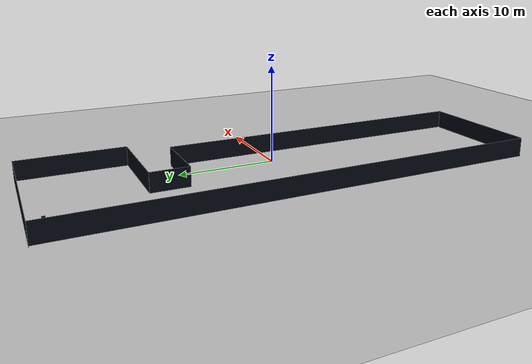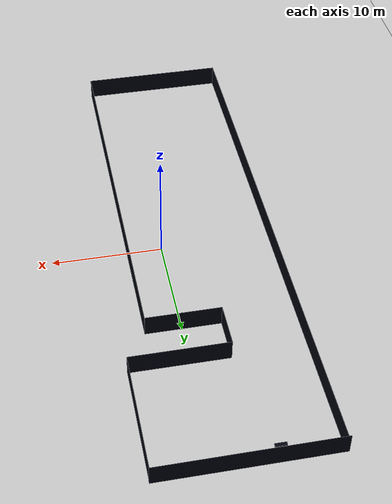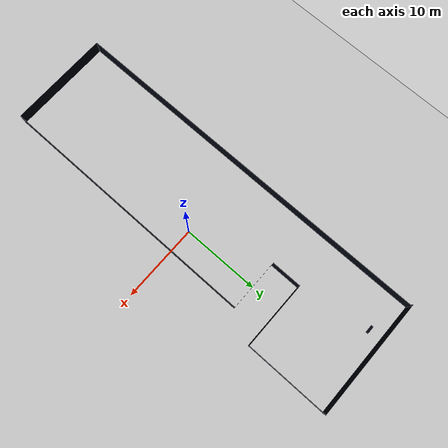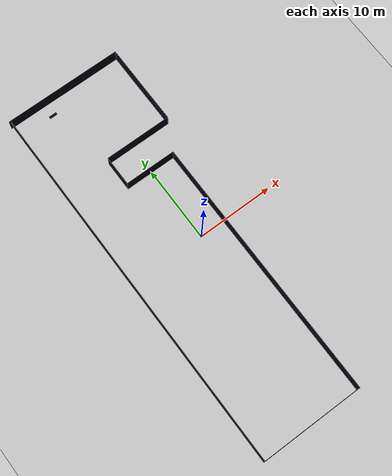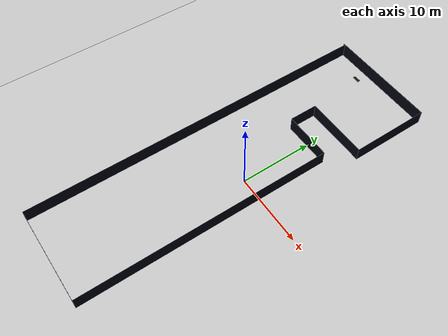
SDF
<?xml version="1.0"?>
<sdf version='1.8'>
    <world name='ahg2202_world'>
        <physics name='1ms' type='ignored'>
            <max_step_size>0.003</max_step_size>
            <real_time_factor>1</real_time_factor>
            <real_time_update_rate>1000</real_time_update_rate>
        </physics>
        <plugin name='ignition::gazebo::systems::Physics' filename='ignition-gazebo-physics-system' />
        <plugin name='ignition::gazebo::systems::UserCommands' filename='ignition-gazebo-user-commands-system' />
        <plugin name='ignition::gazebo::systems::SceneBroadcaster' filename='ignition-gazebo-scene-broadcaster-system' />
        <plugin name='ignition::gazebo::systems::Contact' filename='ignition-gazebo-contact-system' />
        <light name='sun' type='directional'>
            <cast_shadows>1</cast_shadows>
            <pose>0 0 10 0 -0 0</pose>
            <diffuse>0.8 0.8 0.8 1</diffuse>
            <specular>0.2 0.2 0.2 1</specular>
            <attenuation>
                <range>1000</range>
                <constant>0.90000000000000002</constant>
                <linear>0.01</linear>
                <quadratic>0.001</quadratic>
            </attenuation>
            <direction>-0.5 0.1 -0.9</direction>
            <spot>
                <inner_angle>0</inner_angle>
                <outer_angle>0</outer_angle>
                <falloff>0</falloff>
            </spot>
        </light>
        <gravity>0 0 -9.8</gravity>
        <magnetic_field>6e-06 2.3e-05 -4.2e-05</magnetic_field>
        <atmosphere type='adiabatic' />
        <scene>
            <ambient>0.4 0.4 0.4 1</ambient>
            <background>0.7 0.7 0.7 1</background>
            <shadows>1</shadows>
        </scene>
        <model name='ground_plane'>
            <static>1</static>
            <link name='link'>
                <collision name='collision'>
                    <geometry>
                        <plane>
                            <normal>0 0 1</normal>
                            <size>100 100</size>
                        </plane>
                    </geometry>
                    <surface>
                        <friction>
                            <ode />
                        </friction>
                        <bounce />
                        <contact />
                    </surface>
                </collision>
                <visual name='visual'>
                    <geometry>
                        <plane>
                            <normal>0 0 1</normal>
                            <size>100 100</size>
                        </plane>
                    </geometry>
                    <material>
                        <ambient>0.8 0.8 0.8 1</ambient>
                        <diffuse>0.8 0.8 0.8 1</diffuse>
                        <specular>0.8 0.8 0.8 1</specular>
                    </material>
                    <plugin name='__default__' filename='__default__' />
                </visual>
            </link>
            <plugin name='__default__' filename='__default__' />
            <pose>0 0 0 0 -0 0</pose>
        </model>
        <model name='border'>
            <pose>0 0 1 0 0 0</pose>
            <static>true</static>
            <link name='wall1'>
                <pose>-10.005 0 0 0 0 0</pose>
                <static>true</static>
                <collision name='wall1_collision'>
                    <geometry>
                        <box>
                            <size>0.01 49.14 2</size>
                        </box>
                    </geometry>
                </collision>
                <visual name='wall1_visual'>
                    <geometry>
                        <box>
                            <size>0.01 49.14 2</size>
                        </box>
                    </geometry>
                    <material>
                        <ambient>0.1 0.1 0.1 1</ambient>
                        <diffuse>0 0.01 0.05 1</diffuse>
                        <specular>0 0.01 0.05 1</specular>
                    </material>
                </visual>
            </link>
            <link name='wall2'>
                <pose>5.305 19.17 0 0 0 0</pose>
                <static>true</static>
                <collision name='wall2_collision'>
                    <geometry>
                        <box>
                            <size>0.01 10.8 2</size>
                        </box>
                    </geometry>
                </collision>
                <visual name='wall2_visual'>
                    <geometry>
                        <box>
                            <size>0.01 10.8 2</size>
                        </box>
                    </geometry>
                    <material>
                        <ambient>0.1 0.1 0.1 1</ambient>
                        <diffuse>0 0.01 0.05 1</diffuse>
                        <specular>0 0.01 0.05 1</specular>
                    </material>
                </visual>
            </link>
            <link name='wall3'>
                <pose>-2.45 24.575 0 0 0 0</pose>
                <static>true</static>
                <collision name='wall3_collision'>
                    <geometry>
                        <box>
                            <size>15.6 0.01 2</size>
                        </box>
                    </geometry>
                </collision>
                <visual name='wall3_visual'>
                    <geometry>
                        <box>
                            <size>15.6 0.01 2</size>
                        </box>
                    </geometry>
                    <material>
                        <ambient>0.1 0.1 0.1 1</ambient>
                        <diffuse>0 0.01 0.05 1</diffuse>
                        <specular>0 0.01 0.05 1</specular>
                    </material>
                </visual>
            </link>
            <link name='wall4'>
                <pose>-3.4 -24.575 0 0 0 0</pose>
                <static>true</static>
                <collision name='wall4_collision'>
                    <geometry>
                        <box>
                            <size>13.2 0.01 2</size>
                        </box>
                    </geometry>
                    <material>
                        <ambient>0.1 0.1 0.1 1</ambient>
                        <diffuse>0 0.01 0.05 1</diffuse>
                        <specular>0 0.01 0.05 1</specular>
                    </material>
                </collision>
                <visual name='wall4_visual'>
                    <geometry>
                        <box>
                            <size>13.2 0.01 2</size>
                        </box>
                    </geometry>
                    <material>
                        <ambient>0.1 0.1 0.1 1</ambient>
                        <diffuse>0 0.01 0.05 1</diffuse>
                        <specular>0 0.01 0.05 1</specular>
                    </material>
                </visual>
            </link>
            <link name='wall5'>
                <pose>3.205 -7.34 0 0 0 0</pose>
                <static>true</static>
                <collision name='wall5_collision'>
                    <geometry>
                        <box>
                            <size>0.01 34.46 2</size>
                        </box>
                    </geometry>
                    <material>
                        <ambient>0.1 0.1 0.1 1</ambient>
                        <diffuse>0 0.01 0.05 1</diffuse>
                        <specular>0 0.01 0.05 1</specular>
                    </material>
                </collision>
                <visual name='wall5_visual'>
                    <geometry>
                        <box>
                            <size>0.01 34.46 2</size>
                        </box>
                    </geometry>
                    <material>
                        <ambient>0.1 0.1 0.1 1</ambient>
                        <diffuse>0 0.01 0.05 1</diffuse>
                        <specular>0 0.01 0.05 1</specular>
                    </material>
                </visual>
            </link>
            <link name='wall6'>
                <pose>-0.12 9.89 0 0 0 0</pose>
                <static>true</static>
                <collision name='wall6_collision'>
                    <geometry>
                        <box>
                            <size>6.64 0.01 2</size>
                        </box>
                    </geometry>
                    <material>
                        <ambient>0.1 0.1 0.1 1</ambient>
                        <diffuse>0 0.01 0.05 1</diffuse>
                        <specular>0 0.01 0.05 1</specular>
                    </material>
                </collision>
                <visual name='wall6_visual'>
                    <geometry>
                        <box>
                            <size>6.64 0.01 2</size>
                        </box>
                    </geometry>
                    <material>
                        <ambient>0.1 0.1 0.1 1</ambient>
                        <diffuse>0 0.01 0.05 1</diffuse>
                        <specular>0 0.01 0.05 1</specular>
                    </material>
                </visual>
            </link>
            <link name='wall7'>
                <pose>-3.445 11.845 0 0 0 0</pose>
                <static>true</static>
                <collision name='wall2_collision'>
                    <geometry>
                        <box>
                            <size>0.01 3.91 2</size>
                        </box>
                    </geometry>
                </collision>
                <visual name='wall2_visual'>
                    <geometry>
                        <box>
                            <size>0.01 3.91 2</size>
                        </box>
                    </geometry>
                    <material>
                        <ambient>0.1 0.1 0.1 1</ambient>
                        <diffuse>0 0.01 0.05 1</diffuse>
                        <specular>0 0.01 0.05 1</specular>
                    </material>
                </visual>
            </link>
            <link name='wall8'>
                <pose>0.925 13.805 0 0 0 0</pose>
                <static>true</static>
                <collision name='wall8_collision'>
                    <geometry>
                        <box>
                            <size>8.75 0.01 2</size>
                        </box>
                    </geometry>
                    <material>
                        <ambient>0.1 0.1 0.1 1</ambient>
                        <diffuse>0 0.01 0.05 1</diffuse>
                        <specular>0 0.01 0.05 1</specular>
                    </material>
                </collision>
                <visual name='wall8_visual'>
                    <geometry>
                        <box>
                            <size>8.75 0.01 2</size>
                        </box>
                    </geometry>
                    <material>
                        <ambient>0.1 0.1 0.1 1</ambient>
                        <diffuse>0 0.01 0.05 1</diffuse>
                        <specular>0 0.01 0.05 1</specular>
                    </material>
                </visual>
            </link>
            <link name='short_wall0'>
                <pose>-5.25 23 -1 0 0 0</pose>
                <static>true</static>
                <collision name='short_wall0_collision'>
                    <geometry>
                        <box>
                            <size>1 0.3 0.1</size>
                        </box>
                    </geometry>
                    <material>
                        <ambient>0.1 0.1 0.1 1</ambient>
                        <diffuse>0 0.01 0.05 1</diffuse>
                        <specular>0 0.01 0.05 1</specular>
                    </material>
                </collision>
                <visual name='short_wall0_visual'>
                    <geometry>
                        <box>
                            <size>1 0.3 0.1</size>
                        </box>
                    </geometry>
                    <material>
                        <ambient>0.1 0.1 0.1 1</ambient>
                        <diffuse>0 0.01 0.05 1</diffuse>
                        <specular>0 0.01 0.05 1</specular>
                    </material>
                </visual>
            </link>
        </model>
    </world>
</sdf>
